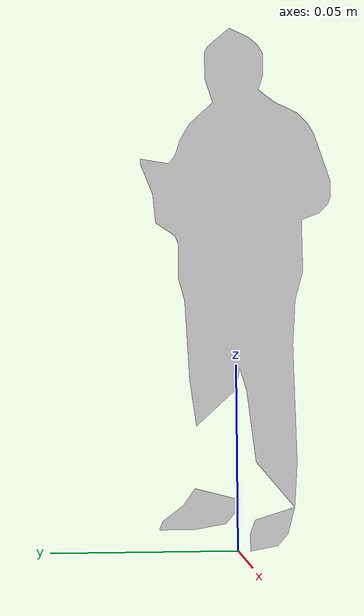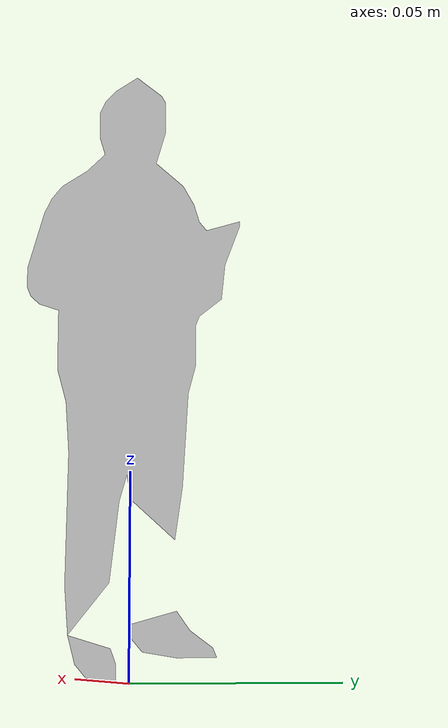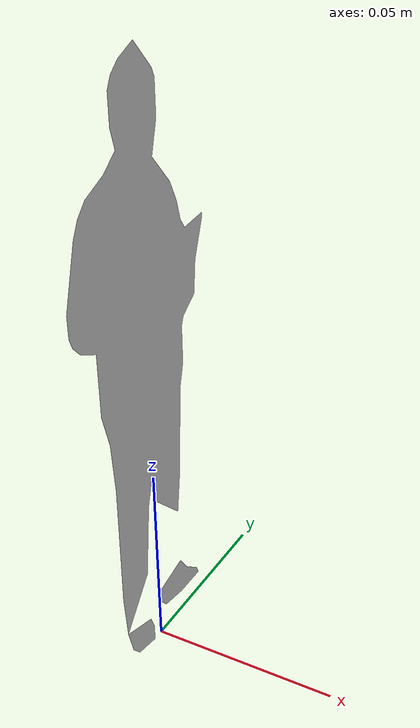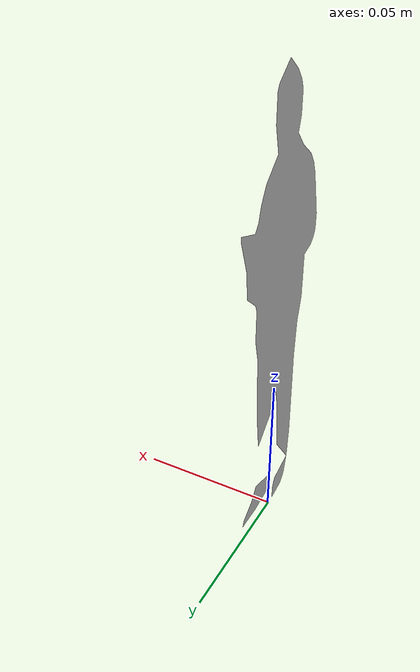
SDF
<?xml version="1.0"?>
<sdf version="1.10">
  <model name="community_person_15">
    <static>true</static>
    <link name="board">
      <collision name="collision"><pose>0 0 0.0750 0 0 0</pose><geometry><box><size>0.004 0.053443 0.150000</size></box></geometry></collision>
      <visual name="person"><geometry><mesh><uri>model://community_person_15/meshes/person.obj</uri></mesh></geometry></visual>
    </link>
  </model>
</sdf>
